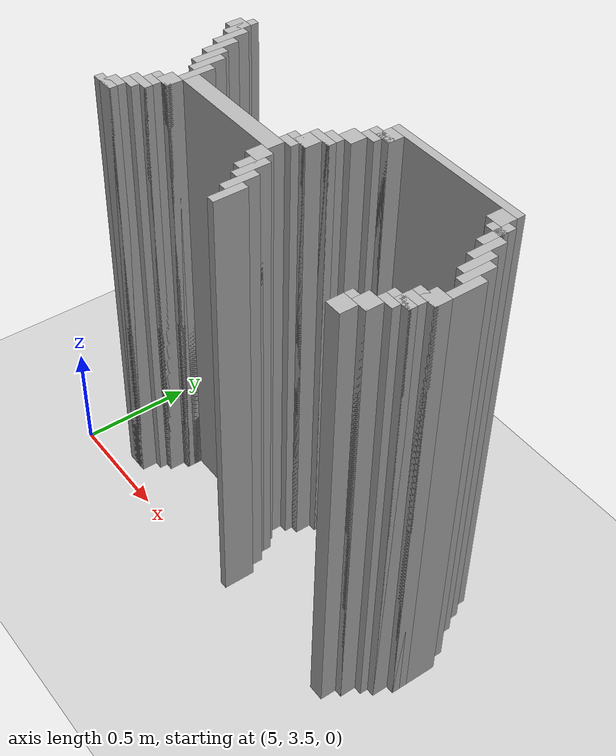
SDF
<sdf version="1.6">
 <world name="slam_world">
  <model name="ground_plane">
   <static>true</static>
   <link name="link">
    <collision name="collision">
     <geometry><plane><normal>0 0 1</normal><size>100 100</size></plane></geometry>
    </collision>
    <visual name="visual">
     <geometry><plane><normal>0 0 1</normal><size>100 100</size></plane></geometry>
     <material>
      <ambient>0.8 0.8 0.8 1</ambient>
      <diffuse>0.8 0.8 0.8 1</diffuse>
      <specular>0.8 0.8 0.8 1</specular>
     </material>
    </visual>
   </link>
  </model>
  <model name="wall_4303">
   <static>true</static>
   <pose>5.237819025522041 4.211136890951276 1.0 0 0 0</pose>
   <link name="link">
    <collision name="collision">
     <geometry><box><size>0.03480278422273782 0.13921113689095127 2.0</size></box></geometry>
    </collision>
    <visual name="visual">
     <geometry><box><size>0.03480278422273782 0.13921113689095127 2.0</size></box></geometry>
     <material><ambient>0.5 0.5 0.5 1</ambient><diffuse>0.7 0.7 0.7 1</diffuse></material>
    </visual>
   </link>
  </model>
  <model name="wall_4304">
   <static>true</static>
   <pose>6.403712296983758 4.263341067285383 1.0 0 0 0</pose>
   <link name="link">
    <collision name="collision">
     <geometry><box><size>0.6264501160092807 0.03480278422273782 2.0</size></box></geometry>
    </collision>
    <visual name="visual">
     <geometry><box><size>0.6264501160092807 0.03480278422273782 2.0</size></box></geometry>
     <material><ambient>0.5 0.5 0.5 1</ambient><diffuse>0.7 0.7 0.7 1</diffuse></material>
    </visual>
   </link>
  </model>
  <model name="wall_4317">
   <static>true</static>
   <pose>5.220417633410673 4.211136890951276 1.0 0 0 0</pose>
   <link name="link">
    <collision name="collision">
     <geometry><box><size>0.06960556844547564 0.06960556844547564 2.0</size></box></geometry>
    </collision>
    <visual name="visual">
     <geometry><box><size>0.06960556844547564 0.06960556844547564 2.0</size></box></geometry>
     <material><ambient>0.5 0.5 0.5 1</ambient><diffuse>0.7 0.7 0.7 1</diffuse></material>
    </visual>
   </link>
  </model>
  <model name="wall_4318">
   <static>true</static>
   <pose>6.125290023201856 4.211136890951276 1.0 0 0 0</pose>
   <link name="link">
    <collision name="collision">
     <geometry><box><size>0.06960556844547564 0.06960556844547564 2.0</size></box></geometry>
    </collision>
    <visual name="visual">
     <geometry><box><size>0.06960556844547564 0.06960556844547564 2.0</size></box></geometry>
     <material><ambient>0.5 0.5 0.5 1</ambient><diffuse>0.7 0.7 0.7 1</diffuse></material>
    </visual>
   </link>
  </model>
  <model name="wall_4319">
   <static>true</static>
   <pose>6.682134570765661 4.211136890951276 1.0 0 0 0</pose>
   <link name="link">
    <collision name="collision">
     <geometry><box><size>0.06960556844547564 0.06960556844547564 2.0</size></box></geometry>
    </collision>
    <visual name="visual">
     <geometry><box><size>0.06960556844547564 0.06960556844547564 2.0</size></box></geometry>
     <material><ambient>0.5 0.5 0.5 1</ambient><diffuse>0.7 0.7 0.7 1</diffuse></material>
    </visual>
   </link>
  </model>
  <model name="wall_4332">
   <static>true</static>
   <pose>5.27262180974478 4.1415313225058 1.0 0 0 0</pose>
   <link name="link">
    <collision name="collision">
     <geometry><box><size>0.03480278422273782 0.13921113689095127 2.0</size></box></geometry>
    </collision>
    <visual name="visual">
     <geometry><box><size>0.03480278422273782 0.13921113689095127 2.0</size></box></geometry>
     <material><ambient>0.5 0.5 0.5 1</ambient><diffuse>0.7 0.7 0.7 1</diffuse></material>
    </visual>
   </link>
  </model>
  <model name="wall_4333">
   <static>true</static>
   <pose>6.107888631090487 4.193735498839907 1.0 0 0 0</pose>
   <link name="link">
    <collision name="collision">
     <geometry><box><size>0.10440835266821345 0.03480278422273782 2.0</size></box></geometry>
    </collision>
    <visual name="visual">
     <geometry><box><size>0.10440835266821345 0.03480278422273782 2.0</size></box></geometry>
     <material><ambient>0.5 0.5 0.5 1</ambient><diffuse>0.7 0.7 0.7 1</diffuse></material>
    </visual>
   </link>
  </model>
  <model name="wall_4334">
   <static>true</static>
   <pose>6.734338747099768 4.1415313225058 1.0 0 0 0</pose>
   <link name="link">
    <collision name="collision">
     <geometry><box><size>0.03480278422273782 0.13921113689095127 2.0</size></box></geometry>
    </collision>
    <visual name="visual">
     <geometry><box><size>0.03480278422273782 0.13921113689095127 2.0</size></box></geometry>
     <material><ambient>0.5 0.5 0.5 1</ambient><diffuse>0.7 0.7 0.7 1</diffuse></material>
    </visual>
   </link>
  </model>
  <model name="wall_4345">
   <static>true</static>
   <pose>6.090487238979118 4.158932714617169 1.0 0 0 0</pose>
   <link name="link">
    <collision name="collision">
     <geometry><box><size>0.06960556844547564 0.03480278422273782 2.0</size></box></geometry>
    </collision>
    <visual name="visual">
     <geometry><box><size>0.06960556844547564 0.03480278422273782 2.0</size></box></geometry>
     <material><ambient>0.5 0.5 0.5 1</ambient><diffuse>0.7 0.7 0.7 1</diffuse></material>
    </visual>
   </link>
  </model>
  <model name="wall_4346">
   <static>true</static>
   <pose>6.716937354988398 4.158932714617169 1.0 0 0 0</pose>
   <link name="link">
    <collision name="collision">
     <geometry><box><size>0.06960556844547564 0.03480278422273782 2.0</size></box></geometry>
    </collision>
    <visual name="visual">
     <geometry><box><size>0.06960556844547564 0.03480278422273782 2.0</size></box></geometry>
     <material><ambient>0.5 0.5 0.5 1</ambient><diffuse>0.7 0.7 0.7 1</diffuse></material>
    </visual>
   </link>
  </model>
  <model name="wall_4356">
   <static>true</static>
   <pose>5.307424593967517 4.071925754060325 1.0 0 0 0</pose>
   <link name="link">
    <collision name="collision">
     <geometry><box><size>0.03480278422273782 0.13921113689095127 2.0</size></box></geometry>
    </collision>
    <visual name="visual">
     <geometry><box><size>0.03480278422273782 0.13921113689095127 2.0</size></box></geometry>
     <material><ambient>0.5 0.5 0.5 1</ambient><diffuse>0.7 0.7 0.7 1</diffuse></material>
    </visual>
   </link>
  </model>
  <model name="wall_4357">
   <static>true</static>
   <pose>6.05568445475638 4.106728538283062 1.0 0 0 0</pose>
   <link name="link">
    <collision name="collision">
     <geometry><box><size>0.06960556844547564 0.06960556844547564 2.0</size></box></geometry>
    </collision>
    <visual name="visual">
     <geometry><box><size>0.06960556844547564 0.06960556844547564 2.0</size></box></geometry>
     <material><ambient>0.5 0.5 0.5 1</ambient><diffuse>0.7 0.7 0.7 1</diffuse></material>
    </visual>
   </link>
  </model>
  <model name="wall_4358">
   <static>true</static>
   <pose>6.769141531322505 4.071925754060325 1.0 0 0 0</pose>
   <link name="link">
    <collision name="collision">
     <geometry><box><size>0.03480278422273782 0.13921113689095127 2.0</size></box></geometry>
    </collision>
    <visual name="visual">
     <geometry><box><size>0.03480278422273782 0.13921113689095127 2.0</size></box></geometry>
     <material><ambient>0.5 0.5 0.5 1</ambient><diffuse>0.7 0.7 0.7 1</diffuse></material>
    </visual>
   </link>
  </model>
  <model name="wall_4371">
   <static>true</static>
   <pose>5.342227378190255 4.002320185614849 1.0 0 0 0</pose>
   <link name="link">
    <collision name="collision">
     <geometry><box><size>0.03480278422273782 0.13921113689095127 2.0</size></box></geometry>
    </collision>
    <visual name="visual">
     <geometry><box><size>0.03480278422273782 0.13921113689095127 2.0</size></box></geometry>
     <material><ambient>0.5 0.5 0.5 1</ambient><diffuse>0.7 0.7 0.7 1</diffuse></material>
    </visual>
   </link>
  </model>
  <model name="wall_4372">
   <static>true</static>
   <pose>6.020881670533642 4.037122969837587 1.0 0 0 0</pose>
   <link name="link">
    <collision name="collision">
     <geometry><box><size>0.06960556844547564 0.06960556844547564 2.0</size></box></geometry>
    </collision>
    <visual name="visual">
     <geometry><box><size>0.06960556844547564 0.06960556844547564 2.0</size></box></geometry>
     <material><ambient>0.5 0.5 0.5 1</ambient><diffuse>0.7 0.7 0.7 1</diffuse></material>
    </visual>
   </link>
  </model>
  <model name="wall_4373">
   <static>true</static>
   <pose>6.803944315545244 4.002320185614849 1.0 0 0 0</pose>
   <link name="link">
    <collision name="collision">
     <geometry><box><size>0.03480278422273782 0.13921113689095127 2.0</size></box></geometry>
    </collision>
    <visual name="visual">
     <geometry><box><size>0.03480278422273782 0.13921113689095127 2.0</size></box></geometry>
     <material><ambient>0.5 0.5 0.5 1</ambient><diffuse>0.7 0.7 0.7 1</diffuse></material>
    </visual>
   </link>
  </model>
  <model name="wall_4386">
   <static>true</static>
   <pose>5.377030162412993 3.967517401392111 1.0 0 0 0</pose>
   <link name="link">
    <collision name="collision">
     <geometry><box><size>0.03480278422273782 0.13921113689095127 2.0</size></box></geometry>
    </collision>
    <visual name="visual">
     <geometry><box><size>0.03480278422273782 0.13921113689095127 2.0</size></box></geometry>
     <material><ambient>0.5 0.5 0.5 1</ambient><diffuse>0.7 0.7 0.7 1</diffuse></material>
    </visual>
   </link>
  </model>
  <model name="wall_4387">
   <static>true</static>
   <pose>6.003480278422273 4.019721577726218 1.0 0 0 0</pose>
   <link name="link">
    <collision name="collision">
     <geometry><box><size>0.10440835266821345 0.03480278422273782 2.0</size></box></geometry>
    </collision>
    <visual name="visual">
     <geometry><box><size>0.10440835266821345 0.03480278422273782 2.0</size></box></geometry>
     <material><ambient>0.5 0.5 0.5 1</ambient><diffuse>0.7 0.7 0.7 1</diffuse></material>
    </visual>
   </link>
  </model>
  <model name="wall_4388">
   <static>true</static>
   <pose>6.838747099767981 3.967517401392111 1.0 0 0 0</pose>
   <link name="link">
    <collision name="collision">
     <geometry><box><size>0.03480278422273782 0.13921113689095127 2.0</size></box></geometry>
    </collision>
    <visual name="visual">
     <geometry><box><size>0.03480278422273782 0.13921113689095127 2.0</size></box></geometry>
     <material><ambient>0.5 0.5 0.5 1</ambient><diffuse>0.7 0.7 0.7 1</diffuse></material>
    </visual>
   </link>
  </model>
  <model name="wall_4399">
   <static>true</static>
   <pose>5.986078886310905 3.967517401392111 1.0 0 0 0</pose>
   <link name="link">
    <collision name="collision">
     <geometry><box><size>0.06960556844547564 0.06960556844547564 2.0</size></box></geometry>
    </collision>
    <visual name="visual">
     <geometry><box><size>0.06960556844547564 0.06960556844547564 2.0</size></box></geometry>
     <material><ambient>0.5 0.5 0.5 1</ambient><diffuse>0.7 0.7 0.7 1</diffuse></material>
    </visual>
   </link>
  </model>
  <model name="wall_4409">
   <static>true</static>
   <pose>5.41183294663573 3.863109048723898 1.0 0 0 0</pose>
   <link name="link">
    <collision name="collision">
     <geometry><box><size>0.03480278422273782 0.2088167053364269 2.0</size></box></geometry>
    </collision>
    <visual name="visual">
     <geometry><box><size>0.03480278422273782 0.2088167053364269 2.0</size></box></geometry>
     <material><ambient>0.5 0.5 0.5 1</ambient><diffuse>0.7 0.7 0.7 1</diffuse></material>
    </visual>
   </link>
  </model>
  <model name="wall_4410">
   <static>true</static>
   <pose>5.968677494199536 3.9501160092807424 1.0 0 0 0</pose>
   <link name="link">
    <collision name="collision">
     <geometry><box><size>0.10440835266821345 0.03480278422273782 2.0</size></box></geometry>
    </collision>
    <visual name="visual">
     <geometry><box><size>0.10440835266821345 0.03480278422273782 2.0</size></box></geometry>
     <material><ambient>0.5 0.5 0.5 1</ambient><diffuse>0.7 0.7 0.7 1</diffuse></material>
    </visual>
   </link>
  </model>
  <model name="wall_4411">
   <static>true</static>
   <pose>6.8735498839907185 3.863109048723898 1.0 0 0 0</pose>
   <link name="link">
    <collision name="collision">
     <geometry><box><size>0.03480278422273782 0.2088167053364269 2.0</size></box></geometry>
    </collision>
    <visual name="visual">
     <geometry><box><size>0.03480278422273782 0.2088167053364269 2.0</size></box></geometry>
     <material><ambient>0.5 0.5 0.5 1</ambient><diffuse>0.7 0.7 0.7 1</diffuse></material>
    </visual>
   </link>
  </model>
  <model name="wall_4422">
   <static>true</static>
   <pose>5.951276102088166 3.9153132250580045 1.0 0 0 0</pose>
   <link name="link">
    <collision name="collision">
     <geometry><box><size>0.06960556844547564 0.03480278422273782 2.0</size></box></geometry>
    </collision>
    <visual name="visual">
     <geometry><box><size>0.06960556844547564 0.03480278422273782 2.0</size></box></geometry>
     <material><ambient>0.5 0.5 0.5 1</ambient><diffuse>0.7 0.7 0.7 1</diffuse></material>
    </visual>
   </link>
  </model>
  <model name="wall_4433">
   <static>true</static>
   <pose>5.690255220417633 3.863109048723898 1.0 0 0 0</pose>
   <link name="link">
    <collision name="collision">
     <geometry><box><size>0.5220417633410672 0.06960556844547564 2.0</size></box></geometry>
    </collision>
    <visual name="visual">
     <geometry><box><size>0.5220417633410672 0.06960556844547564 2.0</size></box></geometry>
     <material><ambient>0.5 0.5 0.5 1</ambient><diffuse>0.7 0.7 0.7 1</diffuse></material>
    </visual>
   </link>
  </model>
  <model name="wall_4449">
   <static>true</static>
   <pose>5.3944315545243615 3.793503480278422 1.0 0 0 0</pose>
   <link name="link">
    <collision name="collision">
     <geometry><box><size>0.06960556844547564 0.06960556844547564 2.0</size></box></geometry>
    </collision>
    <visual name="visual">
     <geometry><box><size>0.06960556844547564 0.06960556844547564 2.0</size></box></geometry>
     <material><ambient>0.5 0.5 0.5 1</ambient><diffuse>0.7 0.7 0.7 1</diffuse></material>
    </visual>
   </link>
  </model>
  <model name="wall_4450">
   <static>true</static>
   <pose>5.951276102088166 3.793503480278422 1.0 0 0 0</pose>
   <link name="link">
    <collision name="collision">
     <geometry><box><size>0.06960556844547564 0.06960556844547564 2.0</size></box></geometry>
    </collision>
    <visual name="visual">
     <geometry><box><size>0.06960556844547564 0.06960556844547564 2.0</size></box></geometry>
     <material><ambient>0.5 0.5 0.5 1</ambient><diffuse>0.7 0.7 0.7 1</diffuse></material>
    </visual>
   </link>
  </model>
  <model name="wall_4451">
   <static>true</static>
   <pose>6.85614849187935 3.793503480278422 1.0 0 0 0</pose>
   <link name="link">
    <collision name="collision">
     <geometry><box><size>0.06960556844547564 0.06960556844547564 2.0</size></box></geometry>
    </collision>
    <visual name="visual">
     <geometry><box><size>0.06960556844547564 0.06960556844547564 2.0</size></box></geometry>
     <material><ambient>0.5 0.5 0.5 1</ambient><diffuse>0.7 0.7 0.7 1</diffuse></material>
    </visual>
   </link>
  </model>
  <model name="wall_4466">
   <static>true</static>
   <pose>5.377030162412993 3.776102088167053 1.0 0 0 0</pose>
   <link name="link">
    <collision name="collision">
     <geometry><box><size>0.10440835266821345 0.03480278422273782 2.0</size></box></geometry>
    </collision>
    <visual name="visual">
     <geometry><box><size>0.10440835266821345 0.03480278422273782 2.0</size></box></geometry>
     <material><ambient>0.5 0.5 0.5 1</ambient><diffuse>0.7 0.7 0.7 1</diffuse></material>
    </visual>
   </link>
  </model>
  <model name="wall_4467">
   <static>true</static>
   <pose>6.003480278422273 3.7238979118329465 1.0 0 0 0</pose>
   <link name="link">
    <collision name="collision">
     <geometry><box><size>0.03480278422273782 0.13921113689095127 2.0</size></box></geometry>
    </collision>
    <visual name="visual">
     <geometry><box><size>0.03480278422273782 0.13921113689095127 2.0</size></box></geometry>
     <material><ambient>0.5 0.5 0.5 1</ambient><diffuse>0.7 0.7 0.7 1</diffuse></material>
    </visual>
   </link>
  </model>
  <model name="wall_4468">
   <static>true</static>
   <pose>6.838747099767981 3.776102088167053 1.0 0 0 0</pose>
   <link name="link">
    <collision name="collision">
     <geometry><box><size>0.10440835266821345 0.03480278422273782 2.0</size></box></geometry>
    </collision>
    <visual name="visual">
     <geometry><box><size>0.10440835266821345 0.03480278422273782 2.0</size></box></geometry>
     <material><ambient>0.5 0.5 0.5 1</ambient><diffuse>0.7 0.7 0.7 1</diffuse></material>
    </visual>
   </link>
  </model>
  <model name="wall_4483">
   <static>true</static>
   <pose>5.359628770301624 3.7238979118329465 1.0 0 0 0</pose>
   <link name="link">
    <collision name="collision">
     <geometry><box><size>0.06960556844547564 0.06960556844547564 2.0</size></box></geometry>
    </collision>
    <visual name="visual">
     <geometry><box><size>0.06960556844547564 0.06960556844547564 2.0</size></box></geometry>
     <material><ambient>0.5 0.5 0.5 1</ambient><diffuse>0.7 0.7 0.7 1</diffuse></material>
    </visual>
   </link>
  </model>
  <model name="wall_4484">
   <static>true</static>
   <pose>5.986078886310905 3.7238979118329465 1.0 0 0 0</pose>
   <link name="link">
    <collision name="collision">
     <geometry><box><size>0.06960556844547564 0.06960556844547564 2.0</size></box></geometry>
    </collision>
    <visual name="visual">
     <geometry><box><size>0.06960556844547564 0.06960556844547564 2.0</size></box></geometry>
     <material><ambient>0.5 0.5 0.5 1</ambient><diffuse>0.7 0.7 0.7 1</diffuse></material>
    </visual>
   </link>
  </model>
  <model name="wall_4485">
   <static>true</static>
   <pose>6.821345707656612 3.7238979118329465 1.0 0 0 0</pose>
   <link name="link">
    <collision name="collision">
     <geometry><box><size>0.06960556844547564 0.06960556844547564 2.0</size></box></geometry>
    </collision>
    <visual name="visual">
     <geometry><box><size>0.06960556844547564 0.06960556844547564 2.0</size></box></geometry>
     <material><ambient>0.5 0.5 0.5 1</ambient><diffuse>0.7 0.7 0.7 1</diffuse></material>
    </visual>
   </link>
  </model>
  <model name="wall_4500">
   <static>true</static>
   <pose>5.342227378190255 3.706496519721578 1.0 0 0 0</pose>
   <link name="link">
    <collision name="collision">
     <geometry><box><size>0.10440835266821345 0.03480278422273782 2.0</size></box></geometry>
    </collision>
    <visual name="visual">
     <geometry><box><size>0.10440835266821345 0.03480278422273782 2.0</size></box></geometry>
     <material><ambient>0.5 0.5 0.5 1</ambient><diffuse>0.7 0.7 0.7 1</diffuse></material>
    </visual>
   </link>
  </model>
  <model name="wall_4501">
   <static>true</static>
   <pose>6.038283062645012 3.6542923433874708 1.0 0 0 0</pose>
   <link name="link">
    <collision name="collision">
     <geometry><box><size>0.03480278422273782 0.13921113689095127 2.0</size></box></geometry>
    </collision>
    <visual name="visual">
     <geometry><box><size>0.03480278422273782 0.13921113689095127 2.0</size></box></geometry>
     <material><ambient>0.5 0.5 0.5 1</ambient><diffuse>0.7 0.7 0.7 1</diffuse></material>
    </visual>
   </link>
  </model>
  <model name="wall_4502">
   <static>true</static>
   <pose>6.803944315545244 3.706496519721578 1.0 0 0 0</pose>
   <link name="link">
    <collision name="collision">
     <geometry><box><size>0.10440835266821345 0.03480278422273782 2.0</size></box></geometry>
    </collision>
    <visual name="visual">
     <geometry><box><size>0.10440835266821345 0.03480278422273782 2.0</size></box></geometry>
     <material><ambient>0.5 0.5 0.5 1</ambient><diffuse>0.7 0.7 0.7 1</diffuse></material>
    </visual>
   </link>
  </model>
  <model name="wall_4514">
   <static>true</static>
   <pose>5.324825986078886 3.67169373549884 1.0 0 0 0</pose>
   <link name="link">
    <collision name="collision">
     <geometry><box><size>0.06960556844547564 0.03480278422273782 2.0</size></box></geometry>
    </collision>
    <visual name="visual">
     <geometry><box><size>0.06960556844547564 0.03480278422273782 2.0</size></box></geometry>
     <material><ambient>0.5 0.5 0.5 1</ambient><diffuse>0.7 0.7 0.7 1</diffuse></material>
    </visual>
   </link>
  </model>
  <model name="wall_4515">
   <static>true</static>
   <pose>6.786542923433874 3.67169373549884 1.0 0 0 0</pose>
   <link name="link">
    <collision name="collision">
     <geometry><box><size>0.06960556844547564 0.03480278422273782 2.0</size></box></geometry>
    </collision>
    <visual name="visual">
     <geometry><box><size>0.06960556844547564 0.03480278422273782 2.0</size></box></geometry>
     <material><ambient>0.5 0.5 0.5 1</ambient><diffuse>0.7 0.7 0.7 1</diffuse></material>
    </visual>
   </link>
  </model>
  <model name="wall_4524">
   <static>true</static>
   <pose>5.290023201856148 3.619489559164733 1.0 0 0 0</pose>
   <link name="link">
    <collision name="collision">
     <geometry><box><size>0.06960556844547564 0.06960556844547564 2.0</size></box></geometry>
    </collision>
    <visual name="visual">
     <geometry><box><size>0.06960556844547564 0.06960556844547564 2.0</size></box></geometry>
     <material><ambient>0.5 0.5 0.5 1</ambient><diffuse>0.7 0.7 0.7 1</diffuse></material>
    </visual>
   </link>
  </model>
  <model name="wall_4525">
   <static>true</static>
   <pose>6.073085846867749 3.584686774941995 1.0 0 0 0</pose>
   <link name="link">
    <collision name="collision">
     <geometry><box><size>0.03480278422273782 0.13921113689095127 2.0</size></box></geometry>
    </collision>
    <visual name="visual">
     <geometry><box><size>0.03480278422273782 0.13921113689095127 2.0</size></box></geometry>
     <material><ambient>0.5 0.5 0.5 1</ambient><diffuse>0.7 0.7 0.7 1</diffuse></material>
    </visual>
   </link>
  </model>
  <model name="wall_4526">
   <static>true</static>
   <pose>6.751740139211137 3.619489559164733 1.0 0 0 0</pose>
   <link name="link">
    <collision name="collision">
     <geometry><box><size>0.06960556844547564 0.06960556844547564 2.0</size></box></geometry>
    </collision>
    <visual name="visual">
     <geometry><box><size>0.06960556844547564 0.06960556844547564 2.0</size></box></geometry>
     <material><ambient>0.5 0.5 0.5 1</ambient><diffuse>0.7 0.7 0.7 1</diffuse></material>
    </visual>
   </link>
  </model>
  <model name="wall_4538">
   <static>true</static>
   <pose>5.27262180974478 3.602088167053364 1.0 0 0 0</pose>
   <link name="link">
    <collision name="collision">
     <geometry><box><size>0.10440835266821345 0.03480278422273782 2.0</size></box></geometry>
    </collision>
    <visual name="visual">
     <geometry><box><size>0.10440835266821345 0.03480278422273782 2.0</size></box></geometry>
     <material><ambient>0.5 0.5 0.5 1</ambient><diffuse>0.7 0.7 0.7 1</diffuse></material>
    </visual>
   </link>
  </model>
  <model name="wall_4539">
   <static>true</static>
   <pose>6.734338747099768 3.602088167053364 1.0 0 0 0</pose>
   <link name="link">
    <collision name="collision">
     <geometry><box><size>0.10440835266821345 0.03480278422273782 2.0</size></box></geometry>
    </collision>
    <visual name="visual">
     <geometry><box><size>0.10440835266821345 0.03480278422273782 2.0</size></box></geometry>
     <material><ambient>0.5 0.5 0.5 1</ambient><diffuse>0.7 0.7 0.7 1</diffuse></material>
    </visual>
   </link>
  </model>
  <model name="wall_4550">
   <static>true</static>
   <pose>6.716937354988398 3.549883990719257 1.0 0 0 0</pose>
   <link name="link">
    <collision name="collision">
     <geometry><box><size>0.06960556844547564 0.06960556844547564 2.0</size></box></geometry>
    </collision>
    <visual name="visual">
     <geometry><box><size>0.06960556844547564 0.06960556844547564 2.0</size></box></geometry>
     <material><ambient>0.5 0.5 0.5 1</ambient><diffuse>0.7 0.7 0.7 1</diffuse></material>
    </visual>
   </link>
  </model>
 </world>
</sdf>
